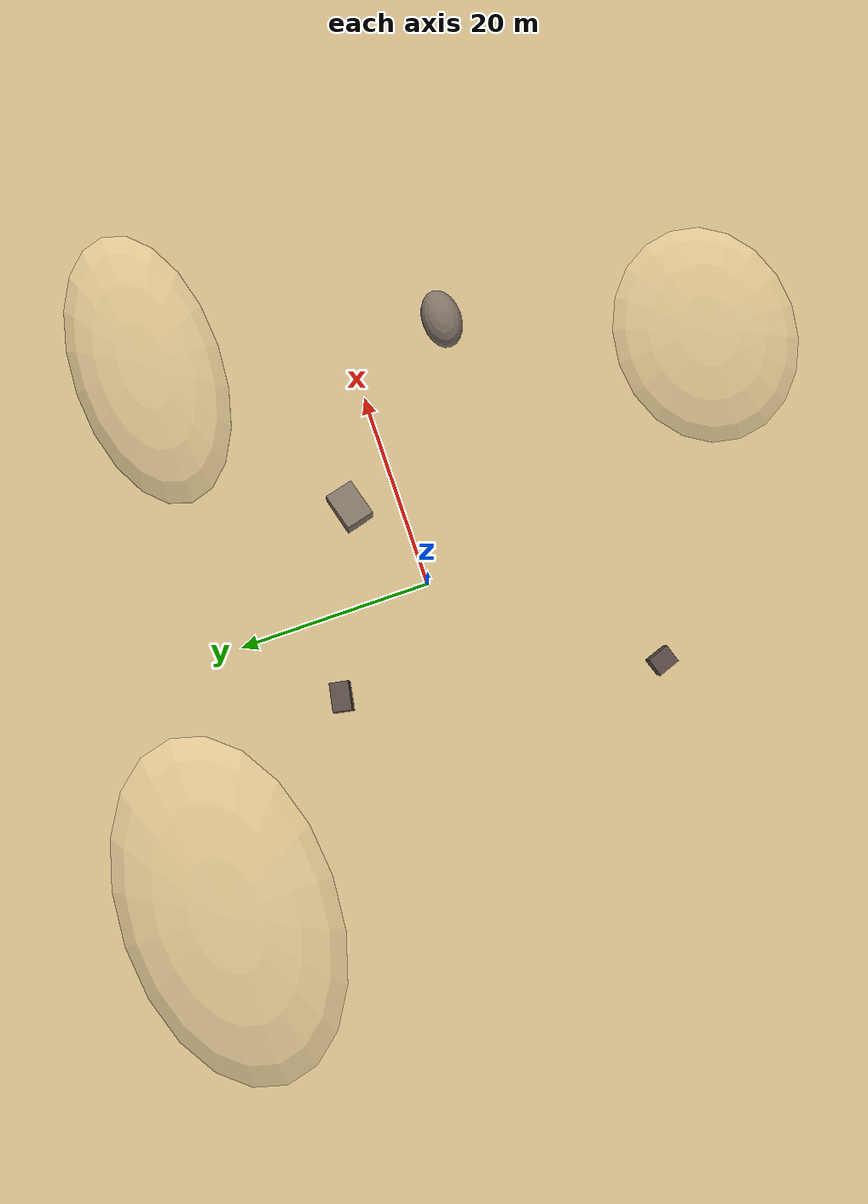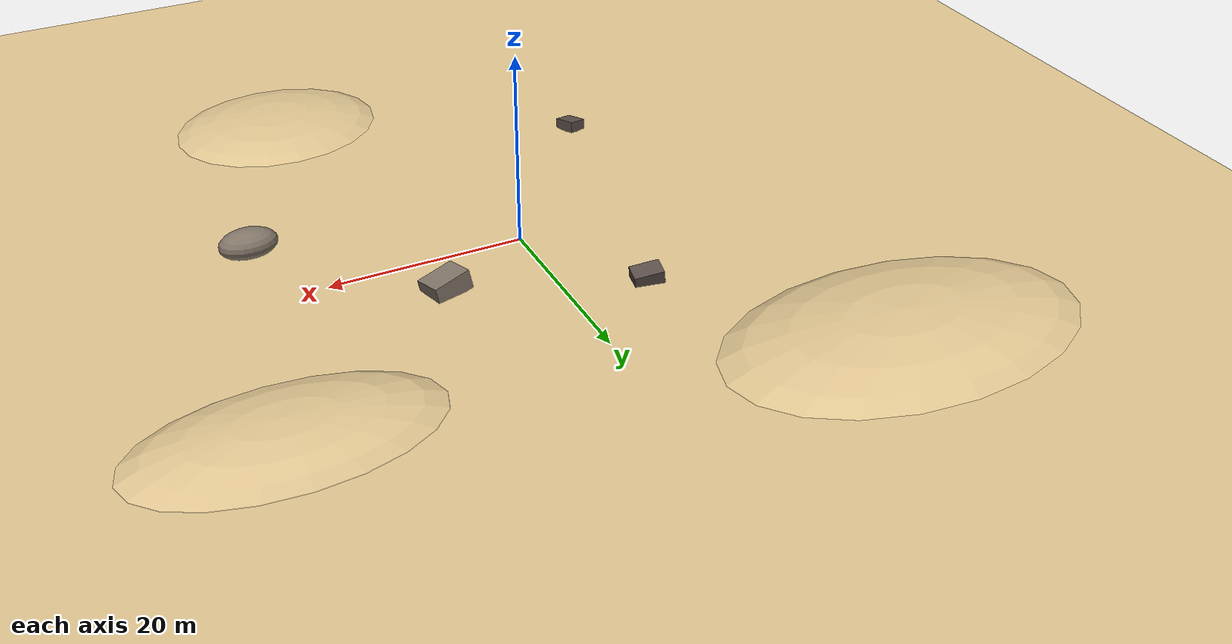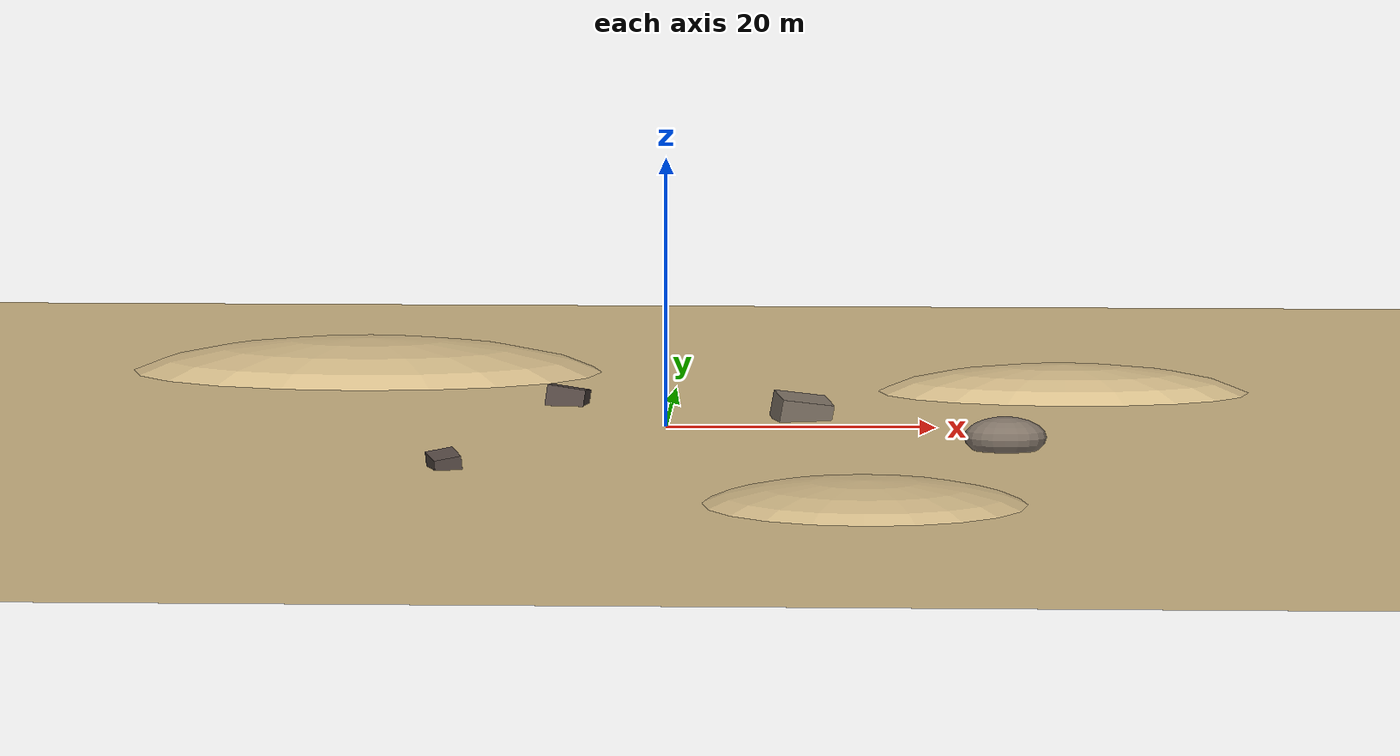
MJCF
<mujoco>
  <!-- Desert environment with sand and rocks -->
  <asset>
    <material name="sand" rgba="0.85 0.75 0.55 1"/>
    <material name="rock" rgba="0.5 0.45 0.4 1"/>
    <material name="dark_rock" rgba="0.35 0.3 0.28 1"/>
  </asset>

  <worldbody>
    <body name="desert_terrain">
      <!-- Sandy ground -->
      <geom name="ground" type="plane" size="100 100 0.1" material="sand" friction="0.8 0.4 0.1"/>

      <!-- Dunes -->
      <geom name="dune_1" type="ellipsoid" size="15 8 3" pos="30 20 -1" material="sand"/>
      <geom name="dune_2" type="ellipsoid" size="20 12 4" pos="-25 30 -1.5" material="sand"/>
      <geom name="dune_3" type="ellipsoid" size="12 10 2.5" pos="15 -35 -1" material="sand"/>

      <!-- Rocks -->
      <geom name="rock_1" type="box" size="2 1.5 1" pos="10 5 0.5" euler="5 10 15" material="rock"/>
      <geom name="rock_2" type="box" size="1.5 1 0.8" pos="-8 12 0.4" euler="-5 8 -10" material="dark_rock"/>
      <geom name="rock_3" type="ellipsoid" size="3 2 1.5" pos="25 -10 0.8" material="rock"/>
      <geom name="rock_4" type="box" size="1 1.2 0.6" pos="-15 -20 0.3" euler="10 -5 20" material="dark_rock"/>
    </body>
  </worldbody>
</mujoco>
